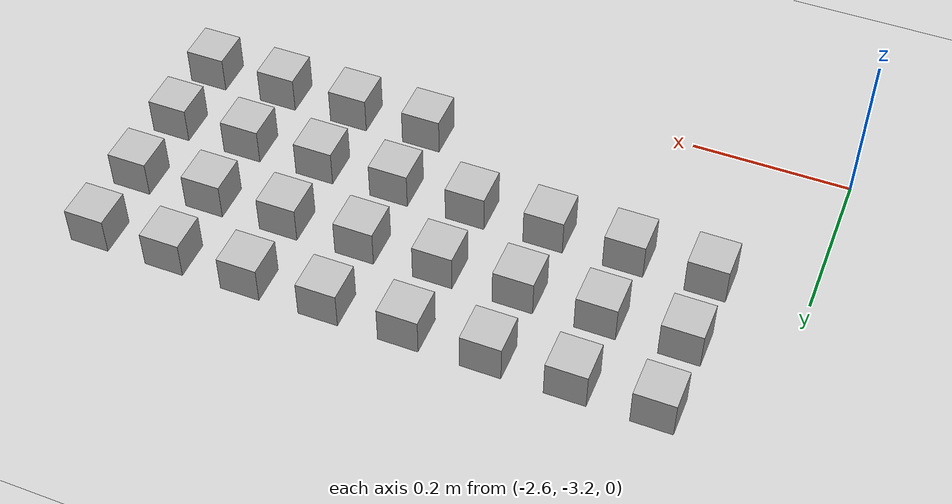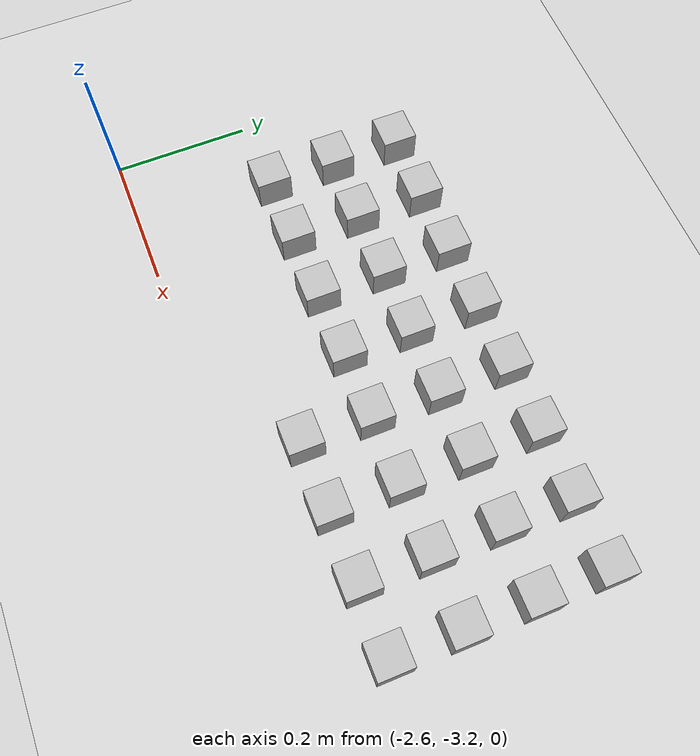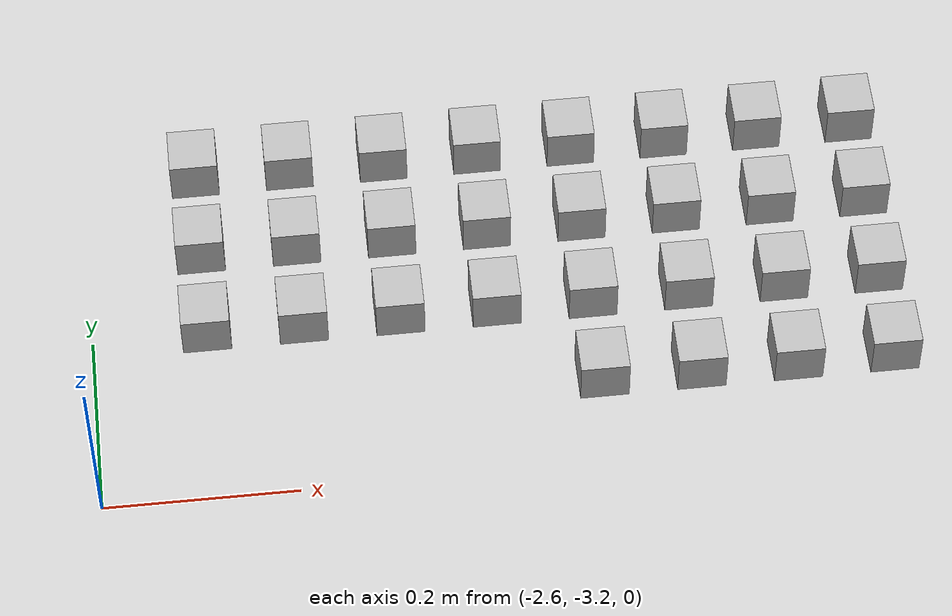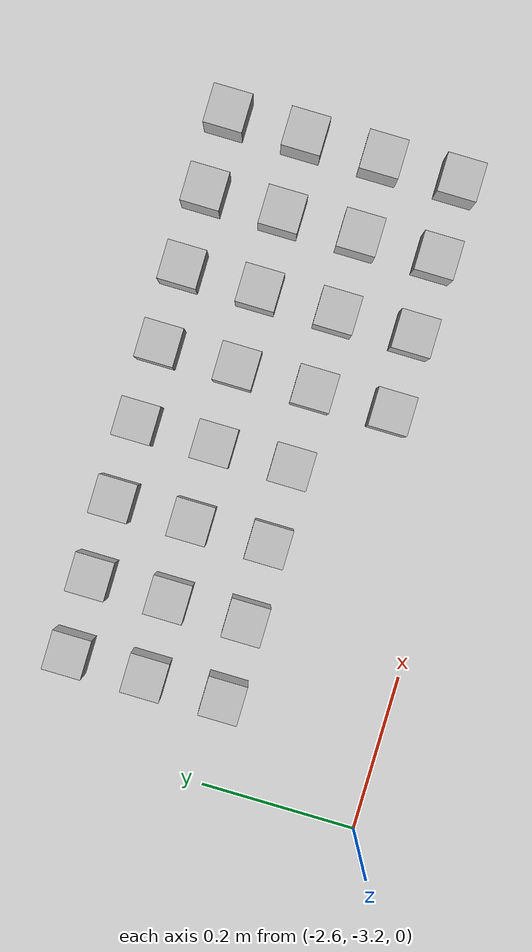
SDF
<sdf version="1.6">
 <world name="default">
  <model name="ground_plane">
   <static>1</static>
   <link name="link">
    <collision name="collision">
     <geometry><plane><normal>0 0 1</normal><size>100 100</size></plane></geometry>
     <surface><friction><ode><mu>100</mu><mu2>50</mu2></ode></friction></surface>
    </collision>
    <visual name="visual">
     <cast_shadows>0</cast_shadows>
     <geometry><plane><normal>0 0 1</normal><size>100 100</size></plane></geometry>
     <material>
      <script><uri>file://media/materials/scripts/gazebo.material</uri><name>Gazebo/Grey</name></script>
     </material>
    </visual>
   </link>
  </model>
  <model name="at484">
   <static>0</static>
   <link name="link">
    <inertial>
     <mass>0.01</mass>
     <inertia><ixx>4e-05</ixx><ixy>0</ixy><ixz>0</ixz><iyy>4e-05</iyy><iyz>0</iyz><izz>4e-05</izz></inertia>
    </inertial>
    <visual name="visual">
     <geometry><box><size>0.05 0.05 0.05</size></box></geometry>
     <material>
      <script>
       <uri>model://at0/materials/scripts</uri>
       <uri>model://at0/materials/textures</uri>
       <name>at0/Diffuse</name>
      </script>
     </material>
    </visual>
    <collision name="collision">
     <geometry><box><size>0.05 0.05 0.05</size></box></geometry>
     <surface><friction><ode><mu>0.8</mu><mu2>0.7</mu2></ode></friction></surface>
    </collision>
   </link>
   <pose>-2.08283 -3.09448 0.025 0 -0 0</pose>
  </model>
  <model name="at485">
   <static>0</static>
   <link name="link">
    <inertial>
     <mass>0.01</mass>
     <inertia><ixx>4e-05</ixx><ixy>0</ixy><ixz>0</ixz><iyy>4e-05</iyy><iyz>0</iyz><izz>4e-05</izz></inertia>
    </inertial>
    <visual name="visual">
     <geometry><box><size>0.05 0.05 0.05</size></box></geometry>
     <material>
      <script>
       <uri>model://at0/materials/scripts</uri>
       <uri>model://at0/materials/textures</uri>
       <name>at0/Diffuse</name>
      </script>
     </material>
    </visual>
    <collision name="collision">
     <geometry><box><size>0.05 0.05 0.05</size></box></geometry>
     <surface><friction><ode><mu>0.8</mu><mu2>0.7</mu2></ode></friction></surface>
    </collision>
   </link>
   <pose>-1.98283 -3.09448 0.025 0 -0 0</pose>
  </model>
  <model name="at486">
   <static>0</static>
   <link name="link">
    <inertial>
     <mass>0.01</mass>
     <inertia><ixx>4e-05</ixx><ixy>0</ixy><ixz>0</ixz><iyy>4e-05</iyy><iyz>0</iyz><izz>4e-05</izz></inertia>
    </inertial>
    <visual name="visual">
     <geometry><box><size>0.05 0.05 0.05</size></box></geometry>
     <material>
      <script>
       <uri>model://at0/materials/scripts</uri>
       <uri>model://at0/materials/textures</uri>
       <name>at0/Diffuse</name>
      </script>
     </material>
    </visual>
    <collision name="collision">
     <geometry><box><size>0.05 0.05 0.05</size></box></geometry>
     <surface><friction><ode><mu>0.8</mu><mu2>0.7</mu2></ode></friction></surface>
    </collision>
   </link>
   <pose>-1.88283 -3.09448 0.025 0 -0 0</pose>
  </model>
  <model name="at487">
   <static>0</static>
   <link name="link">
    <inertial>
     <mass>0.01</mass>
     <inertia><ixx>4e-05</ixx><ixy>0</ixy><ixz>0</ixz><iyy>4e-05</iyy><iyz>0</iyz><izz>4e-05</izz></inertia>
    </inertial>
    <visual name="visual">
     <geometry><box><size>0.05 0.05 0.05</size></box></geometry>
     <material>
      <script>
       <uri>model://at0/materials/scripts</uri>
       <uri>model://at0/materials/textures</uri>
       <name>at0/Diffuse</name>
      </script>
     </material>
    </visual>
    <collision name="collision">
     <geometry><box><size>0.05 0.05 0.05</size></box></geometry>
     <surface><friction><ode><mu>0.8</mu><mu2>0.7</mu2></ode></friction></surface>
    </collision>
   </link>
   <pose>-1.78283 -3.09448 0.025 0 -0 0</pose>
  </model>
  <model name="at488">
   <static>0</static>
   <link name="link">
    <inertial>
     <mass>0.01</mass>
     <inertia><ixx>4e-05</ixx><ixy>0</ixy><ixz>0</ixz><iyy>4e-05</iyy><iyz>0</iyz><izz>4e-05</izz></inertia>
    </inertial>
    <visual name="visual">
     <geometry><box><size>0.05 0.05 0.05</size></box></geometry>
     <material>
      <script>
       <uri>model://at0/materials/scripts</uri>
       <uri>model://at0/materials/textures</uri>
       <name>at0/Diffuse</name>
      </script>
     </material>
    </visual>
    <collision name="collision">
     <geometry><box><size>0.05 0.05 0.05</size></box></geometry>
     <surface><friction><ode><mu>0.8</mu><mu2>0.7</mu2></ode></friction></surface>
    </collision>
   </link>
   <pose>-2.48283 -2.99448 0.025 0 -0 0</pose>
  </model>
  <model name="at489">
   <static>0</static>
   <link name="link">
    <inertial>
     <mass>0.01</mass>
     <inertia><ixx>4e-05</ixx><ixy>0</ixy><ixz>0</ixz><iyy>4e-05</iyy><iyz>0</iyz><izz>4e-05</izz></inertia>
    </inertial>
    <visual name="visual">
     <geometry><box><size>0.05 0.05 0.05</size></box></geometry>
     <material>
      <script>
       <uri>model://at0/materials/scripts</uri>
       <uri>model://at0/materials/textures</uri>
       <name>at0/Diffuse</name>
      </script>
     </material>
    </visual>
    <collision name="collision">
     <geometry><box><size>0.05 0.05 0.05</size></box></geometry>
     <surface><friction><ode><mu>0.8</mu><mu2>0.7</mu2></ode></friction></surface>
    </collision>
   </link>
   <pose>-2.38283 -2.99448 0.025 0 -0 0</pose>
  </model>
  <model name="at490">
   <static>0</static>
   <link name="link">
    <inertial>
     <mass>0.01</mass>
     <inertia><ixx>4e-05</ixx><ixy>0</ixy><ixz>0</ixz><iyy>4e-05</iyy><iyz>0</iyz><izz>4e-05</izz></inertia>
    </inertial>
    <visual name="visual">
     <geometry><box><size>0.05 0.05 0.05</size></box></geometry>
     <material>
      <script>
       <uri>model://at0/materials/scripts</uri>
       <uri>model://at0/materials/textures</uri>
       <name>at0/Diffuse</name>
      </script>
     </material>
    </visual>
    <collision name="collision">
     <geometry><box><size>0.05 0.05 0.05</size></box></geometry>
     <surface><friction><ode><mu>0.8</mu><mu2>0.7</mu2></ode></friction></surface>
    </collision>
   </link>
   <pose>-2.28283 -2.99448 0.025 0 -0 0</pose>
  </model>
  <model name="at491">
   <static>0</static>
   <link name="link">
    <inertial>
     <mass>0.01</mass>
     <inertia><ixx>4e-05</ixx><ixy>0</ixy><ixz>0</ixz><iyy>4e-05</iyy><iyz>0</iyz><izz>4e-05</izz></inertia>
    </inertial>
    <visual name="visual">
     <geometry><box><size>0.05 0.05 0.05</size></box></geometry>
     <material>
      <script>
       <uri>model://at0/materials/scripts</uri>
       <uri>model://at0/materials/textures</uri>
       <name>at0/Diffuse</name>
      </script>
     </material>
    </visual>
    <collision name="collision">
     <geometry><box><size>0.05 0.05 0.05</size></box></geometry>
     <surface><friction><ode><mu>0.8</mu><mu2>0.7</mu2></ode></friction></surface>
    </collision>
   </link>
   <pose>-2.18283 -2.99448 0.025 0 -0 0</pose>
  </model>
  <model name="at492">
   <static>0</static>
   <link name="link">
    <inertial>
     <mass>0.01</mass>
     <inertia><ixx>4e-05</ixx><ixy>0</ixy><ixz>0</ixz><iyy>4e-05</iyy><iyz>0</iyz><izz>4e-05</izz></inertia>
    </inertial>
    <visual name="visual">
     <geometry><box><size>0.05 0.05 0.05</size></box></geometry>
     <material>
      <script>
       <uri>model://at0/materials/scripts</uri>
       <uri>model://at0/materials/textures</uri>
       <name>at0/Diffuse</name>
      </script>
     </material>
    </visual>
    <collision name="collision">
     <geometry><box><size>0.05 0.05 0.05</size></box></geometry>
     <surface><friction><ode><mu>0.8</mu><mu2>0.7</mu2></ode></friction></surface>
    </collision>
   </link>
   <pose>-2.08283 -2.99448 0.025 0 -0 0</pose>
  </model>
  <model name="at493">
   <static>0</static>
   <link name="link">
    <inertial>
     <mass>0.01</mass>
     <inertia><ixx>4e-05</ixx><ixy>0</ixy><ixz>0</ixz><iyy>4e-05</iyy><iyz>0</iyz><izz>4e-05</izz></inertia>
    </inertial>
    <visual name="visual">
     <geometry><box><size>0.05 0.05 0.05</size></box></geometry>
     <material>
      <script>
       <uri>model://at0/materials/scripts</uri>
       <uri>model://at0/materials/textures</uri>
       <name>at0/Diffuse</name>
      </script>
     </material>
    </visual>
    <collision name="collision">
     <geometry><box><size>0.05 0.05 0.05</size></box></geometry>
     <surface><friction><ode><mu>0.8</mu><mu2>0.7</mu2></ode></friction></surface>
    </collision>
   </link>
   <pose>-1.98283 -2.99448 0.025 0 -0 0</pose>
  </model>
  <model name="at494">
   <static>0</static>
   <link name="link">
    <inertial>
     <mass>0.01</mass>
     <inertia><ixx>4e-05</ixx><ixy>0</ixy><ixz>0</ixz><iyy>4e-05</iyy><iyz>0</iyz><izz>4e-05</izz></inertia>
    </inertial>
    <visual name="visual">
     <geometry><box><size>0.05 0.05 0.05</size></box></geometry>
     <material>
      <script>
       <uri>model://at0/materials/scripts</uri>
       <uri>model://at0/materials/textures</uri>
       <name>at0/Diffuse</name>
      </script>
     </material>
    </visual>
    <collision name="collision">
     <geometry><box><size>0.05 0.05 0.05</size></box></geometry>
     <surface><friction><ode><mu>0.8</mu><mu2>0.7</mu2></ode></friction></surface>
    </collision>
   </link>
   <pose>-1.88283 -2.99448 0.025 0 -0 0</pose>
  </model>
  <model name="at495">
   <static>0</static>
   <link name="link">
    <inertial>
     <mass>0.01</mass>
     <inertia><ixx>4e-05</ixx><ixy>0</ixy><ixz>0</ixz><iyy>4e-05</iyy><iyz>0</iyz><izz>4e-05</izz></inertia>
    </inertial>
    <visual name="visual">
     <geometry><box><size>0.05 0.05 0.05</size></box></geometry>
     <material>
      <script>
       <uri>model://at0/materials/scripts</uri>
       <uri>model://at0/materials/textures</uri>
       <name>at0/Diffuse</name>
      </script>
     </material>
    </visual>
    <collision name="collision">
     <geometry><box><size>0.05 0.05 0.05</size></box></geometry>
     <surface><friction><ode><mu>0.8</mu><mu2>0.7</mu2></ode></friction></surface>
    </collision>
   </link>
   <pose>-1.78283 -2.99448 0.025 0 -0 0</pose>
  </model>
  <model name="at496">
   <static>0</static>
   <link name="link">
    <inertial>
     <mass>0.01</mass>
     <inertia><ixx>4e-05</ixx><ixy>0</ixy><ixz>0</ixz><iyy>4e-05</iyy><iyz>0</iyz><izz>4e-05</izz></inertia>
    </inertial>
    <visual name="visual">
     <geometry><box><size>0.05 0.05 0.05</size></box></geometry>
     <material>
      <script>
       <uri>model://at0/materials/scripts</uri>
       <uri>model://at0/materials/textures</uri>
       <name>at0/Diffuse</name>
      </script>
     </material>
    </visual>
    <collision name="collision">
     <geometry><box><size>0.05 0.05 0.05</size></box></geometry>
     <surface><friction><ode><mu>0.8</mu><mu2>0.7</mu2></ode></friction></surface>
    </collision>
   </link>
   <pose>-2.48283 -2.89448 0.025 0 -0 0</pose>
  </model>
  <model name="at497">
   <static>0</static>
   <link name="link">
    <inertial>
     <mass>0.01</mass>
     <inertia><ixx>4e-05</ixx><ixy>0</ixy><ixz>0</ixz><iyy>4e-05</iyy><iyz>0</iyz><izz>4e-05</izz></inertia>
    </inertial>
    <visual name="visual">
     <geometry><box><size>0.05 0.05 0.05</size></box></geometry>
     <material>
      <script>
       <uri>model://at0/materials/scripts</uri>
       <uri>model://at0/materials/textures</uri>
       <name>at0/Diffuse</name>
      </script>
     </material>
    </visual>
    <collision name="collision">
     <geometry><box><size>0.05 0.05 0.05</size></box></geometry>
     <surface><friction><ode><mu>0.8</mu><mu2>0.7</mu2></ode></friction></surface>
    </collision>
   </link>
   <pose>-2.38283 -2.89448 0.025 0 -0 0</pose>
  </model>
  <model name="at498">
   <static>0</static>
   <link name="link">
    <inertial>
     <mass>0.01</mass>
     <inertia><ixx>4e-05</ixx><ixy>0</ixy><ixz>0</ixz><iyy>4e-05</iyy><iyz>0</iyz><izz>4e-05</izz></inertia>
    </inertial>
    <visual name="visual">
     <geometry><box><size>0.05 0.05 0.05</size></box></geometry>
     <material>
      <script>
       <uri>model://at0/materials/scripts</uri>
       <uri>model://at0/materials/textures</uri>
       <name>at0/Diffuse</name>
      </script>
     </material>
    </visual>
    <collision name="collision">
     <geometry><box><size>0.05 0.05 0.05</size></box></geometry>
     <surface><friction><ode><mu>0.8</mu><mu2>0.7</mu2></ode></friction></surface>
    </collision>
   </link>
   <pose>-2.28283 -2.89448 0.025 0 -0 0</pose>
  </model>
  <model name="at499">
   <static>0</static>
   <link name="link">
    <inertial>
     <mass>0.01</mass>
     <inertia><ixx>4e-05</ixx><ixy>0</ixy><ixz>0</ixz><iyy>4e-05</iyy><iyz>0</iyz><izz>4e-05</izz></inertia>
    </inertial>
    <visual name="visual">
     <geometry><box><size>0.05 0.05 0.05</size></box></geometry>
     <material>
      <script>
       <uri>model://at0/materials/scripts</uri>
       <uri>model://at0/materials/textures</uri>
       <name>at0/Diffuse</name>
      </script>
     </material>
    </visual>
    <collision name="collision">
     <geometry><box><size>0.05 0.05 0.05</size></box></geometry>
     <surface><friction><ode><mu>0.8</mu><mu2>0.7</mu2></ode></friction></surface>
    </collision>
   </link>
   <pose>-2.18283 -2.89448 0.025 0 -0 0</pose>
  </model>
  <model name="at500">
   <static>0</static>
   <link name="link">
    <inertial>
     <mass>0.01</mass>
     <inertia><ixx>4e-05</ixx><ixy>0</ixy><ixz>0</ixz><iyy>4e-05</iyy><iyz>0</iyz><izz>4e-05</izz></inertia>
    </inertial>
    <visual name="visual">
     <geometry><box><size>0.05 0.05 0.05</size></box></geometry>
     <material>
      <script>
       <uri>model://at0/materials/scripts</uri>
       <uri>model://at0/materials/textures</uri>
       <name>at0/Diffuse</name>
      </script>
     </material>
    </visual>
    <collision name="collision">
     <geometry><box><size>0.05 0.05 0.05</size></box></geometry>
     <surface><friction><ode><mu>0.8</mu><mu2>0.7</mu2></ode></friction></surface>
    </collision>
   </link>
   <pose>-2.08283 -2.89448 0.025 0 -0 0</pose>
  </model>
  <model name="at501">
   <static>0</static>
   <link name="link">
    <inertial>
     <mass>0.01</mass>
     <inertia><ixx>4e-05</ixx><ixy>0</ixy><ixz>0</ixz><iyy>4e-05</iyy><iyz>0</iyz><izz>4e-05</izz></inertia>
    </inertial>
    <visual name="visual">
     <geometry><box><size>0.05 0.05 0.05</size></box></geometry>
     <material>
      <script>
       <uri>model://at0/materials/scripts</uri>
       <uri>model://at0/materials/textures</uri>
       <name>at0/Diffuse</name>
      </script>
     </material>
    </visual>
    <collision name="collision">
     <geometry><box><size>0.05 0.05 0.05</size></box></geometry>
     <surface><friction><ode><mu>0.8</mu><mu2>0.7</mu2></ode></friction></surface>
    </collision>
   </link>
   <pose>-1.98283 -2.89448 0.025 0 -0 0</pose>
  </model>
  <model name="at502">
   <static>0</static>
   <link name="link">
    <inertial>
     <mass>0.01</mass>
     <inertia><ixx>4e-05</ixx><ixy>0</ixy><ixz>0</ixz><iyy>4e-05</iyy><iyz>0</iyz><izz>4e-05</izz></inertia>
    </inertial>
    <visual name="visual">
     <geometry><box><size>0.05 0.05 0.05</size></box></geometry>
     <material>
      <script>
       <uri>model://at0/materials/scripts</uri>
       <uri>model://at0/materials/textures</uri>
       <name>at0/Diffuse</name>
      </script>
     </material>
    </visual>
    <collision name="collision">
     <geometry><box><size>0.05 0.05 0.05</size></box></geometry>
     <surface><friction><ode><mu>0.8</mu><mu2>0.7</mu2></ode></friction></surface>
    </collision>
   </link>
   <pose>-1.88283 -2.89448 0.025 0 -0 0</pose>
  </model>
  <model name="at503">
   <static>0</static>
   <link name="link">
    <inertial>
     <mass>0.01</mass>
     <inertia><ixx>4e-05</ixx><ixy>0</ixy><ixz>0</ixz><iyy>4e-05</iyy><iyz>0</iyz><izz>4e-05</izz></inertia>
    </inertial>
    <visual name="visual">
     <geometry><box><size>0.05 0.05 0.05</size></box></geometry>
     <material>
      <script>
       <uri>model://at0/materials/scripts</uri>
       <uri>model://at0/materials/textures</uri>
       <name>at0/Diffuse</name>
      </script>
     </material>
    </visual>
    <collision name="collision">
     <geometry><box><size>0.05 0.05 0.05</size></box></geometry>
     <surface><friction><ode><mu>0.8</mu><mu2>0.7</mu2></ode></friction></surface>
    </collision>
   </link>
   <pose>-1.78283 -2.89448 0.025 0 -0 0</pose>
  </model>
  <model name="at504">
   <static>0</static>
   <link name="link">
    <inertial>
     <mass>0.01</mass>
     <inertia><ixx>4e-05</ixx><ixy>0</ixy><ixz>0</ixz><iyy>4e-05</iyy><iyz>0</iyz><izz>4e-05</izz></inertia>
    </inertial>
    <visual name="visual">
     <geometry><box><size>0.05 0.05 0.05</size></box></geometry>
     <material>
      <script>
       <uri>model://at0/materials/scripts</uri>
       <uri>model://at0/materials/textures</uri>
       <name>at0/Diffuse</name>
      </script>
     </material>
    </visual>
    <collision name="collision">
     <geometry><box><size>0.05 0.05 0.05</size></box></geometry>
     <surface><friction><ode><mu>0.8</mu><mu2>0.7</mu2></ode></friction></surface>
    </collision>
   </link>
   <pose>-2.48283 -2.79448 0.025 0 -0 0</pose>
  </model>
  <model name="at505">
   <static>0</static>
   <link name="link">
    <inertial>
     <mass>0.01</mass>
     <inertia><ixx>4e-05</ixx><ixy>0</ixy><ixz>0</ixz><iyy>4e-05</iyy><iyz>0</iyz><izz>4e-05</izz></inertia>
    </inertial>
    <visual name="visual">
     <geometry><box><size>0.05 0.05 0.05</size></box></geometry>
     <material>
      <script>
       <uri>model://at0/materials/scripts</uri>
       <uri>model://at0/materials/textures</uri>
       <name>at0/Diffuse</name>
      </script>
     </material>
    </visual>
    <collision name="collision">
     <geometry><box><size>0.05 0.05 0.05</size></box></geometry>
     <surface><friction><ode><mu>0.8</mu><mu2>0.7</mu2></ode></friction></surface>
    </collision>
   </link>
   <pose>-2.38283 -2.79448 0.025 0 -0 0</pose>
  </model>
  <model name="at506">
   <static>0</static>
   <link name="link">
    <inertial>
     <mass>0.01</mass>
     <inertia><ixx>4e-05</ixx><ixy>0</ixy><ixz>0</ixz><iyy>4e-05</iyy><iyz>0</iyz><izz>4e-05</izz></inertia>
    </inertial>
    <visual name="visual">
     <geometry><box><size>0.05 0.05 0.05</size></box></geometry>
     <material>
      <script>
       <uri>model://at0/materials/scripts</uri>
       <uri>model://at0/materials/textures</uri>
       <name>at0/Diffuse</name>
      </script>
     </material>
    </visual>
    <collision name="collision">
     <geometry><box><size>0.05 0.05 0.05</size></box></geometry>
     <surface><friction><ode><mu>0.8</mu><mu2>0.7</mu2></ode></friction></surface>
    </collision>
   </link>
   <pose>-2.28283 -2.79448 0.025 0 -0 0</pose>
  </model>
  <model name="at507">
   <static>0</static>
   <link name="link">
    <inertial>
     <mass>0.01</mass>
     <inertia><ixx>4e-05</ixx><ixy>0</ixy><ixz>0</ixz><iyy>4e-05</iyy><iyz>0</iyz><izz>4e-05</izz></inertia>
    </inertial>
    <visual name="visual">
     <geometry><box><size>0.05 0.05 0.05</size></box></geometry>
     <material>
      <script>
       <uri>model://at0/materials/scripts</uri>
       <uri>model://at0/materials/textures</uri>
       <name>at0/Diffuse</name>
      </script>
     </material>
    </visual>
    <collision name="collision">
     <geometry><box><size>0.05 0.05 0.05</size></box></geometry>
     <surface><friction><ode><mu>0.8</mu><mu2>0.7</mu2></ode></friction></surface>
    </collision>
   </link>
   <pose>-2.18283 -2.79448 0.025 0 -0 0</pose>
  </model>
  <model name="at508">
   <static>0</static>
   <link name="link">
    <inertial>
     <mass>0.01</mass>
     <inertia><ixx>4e-05</ixx><ixy>0</ixy><ixz>0</ixz><iyy>4e-05</iyy><iyz>0</iyz><izz>4e-05</izz></inertia>
    </inertial>
    <visual name="visual">
     <geometry><box><size>0.05 0.05 0.05</size></box></geometry>
     <material>
      <script>
       <uri>model://at0/materials/scripts</uri>
       <uri>model://at0/materials/textures</uri>
       <name>at0/Diffuse</name>
      </script>
     </material>
    </visual>
    <collision name="collision">
     <geometry><box><size>0.05 0.05 0.05</size></box></geometry>
     <surface><friction><ode><mu>0.8</mu><mu2>0.7</mu2></ode></friction></surface>
    </collision>
   </link>
   <pose>-2.08283 -2.79448 0.025 0 -0 0</pose>
  </model>
  <model name="at509">
   <static>0</static>
   <link name="link">
    <inertial>
     <mass>0.01</mass>
     <inertia><ixx>4e-05</ixx><ixy>0</ixy><ixz>0</ixz><iyy>4e-05</iyy><iyz>0</iyz><izz>4e-05</izz></inertia>
    </inertial>
    <visual name="visual">
     <geometry><box><size>0.05 0.05 0.05</size></box></geometry>
     <material>
      <script>
       <uri>model://at0/materials/scripts</uri>
       <uri>model://at0/materials/textures</uri>
       <name>at0/Diffuse</name>
      </script>
     </material>
    </visual>
    <collision name="collision">
     <geometry><box><size>0.05 0.05 0.05</size></box></geometry>
     <surface><friction><ode><mu>0.8</mu><mu2>0.7</mu2></ode></friction></surface>
    </collision>
   </link>
   <pose>-1.98283 -2.79448 0.025 0 -0 0</pose>
  </model>
  <model name="at510">
   <static>0</static>
   <link name="link">
    <inertial>
     <mass>0.01</mass>
     <inertia><ixx>4e-05</ixx><ixy>0</ixy><ixz>0</ixz><iyy>4e-05</iyy><iyz>0</iyz><izz>4e-05</izz></inertia>
    </inertial>
    <visual name="visual">
     <geometry><box><size>0.05 0.05 0.05</size></box></geometry>
     <material>
      <script>
       <uri>model://at0/materials/scripts</uri>
       <uri>model://at0/materials/textures</uri>
       <name>at0/Diffuse</name>
      </script>
     </material>
    </visual>
    <collision name="collision">
     <geometry><box><size>0.05 0.05 0.05</size></box></geometry>
     <surface><friction><ode><mu>0.8</mu><mu2>0.7</mu2></ode></friction></surface>
    </collision>
   </link>
   <pose>-1.88283 -2.79448 0.025 0 -0 0</pose>
  </model>
  <model name="at511">
   <static>0</static>
   <link name="link">
    <inertial>
     <mass>0.01</mass>
     <inertia><ixx>4e-05</ixx><ixy>0</ixy><ixz>0</ixz><iyy>4e-05</iyy><iyz>0</iyz><izz>4e-05</izz></inertia>
    </inertial>
    <visual name="visual">
     <geometry><box><size>0.05 0.05 0.05</size></box></geometry>
     <material>
      <script>
       <uri>model://at0/materials/scripts</uri>
       <uri>model://at0/materials/textures</uri>
       <name>at0/Diffuse</name>
      </script>
     </material>
    </visual>
    <collision name="collision">
     <geometry><box><size>0.05 0.05 0.05</size></box></geometry>
     <surface><friction><ode><mu>0.8</mu><mu2>0.7</mu2></ode></friction></surface>
    </collision>
   </link>
   <pose>-1.78283 -2.79448 0.025 0 -0 0</pose>
  </model>
 </world>
</sdf>
